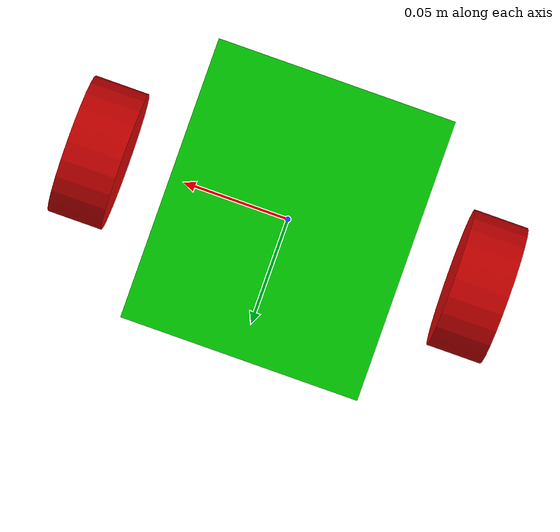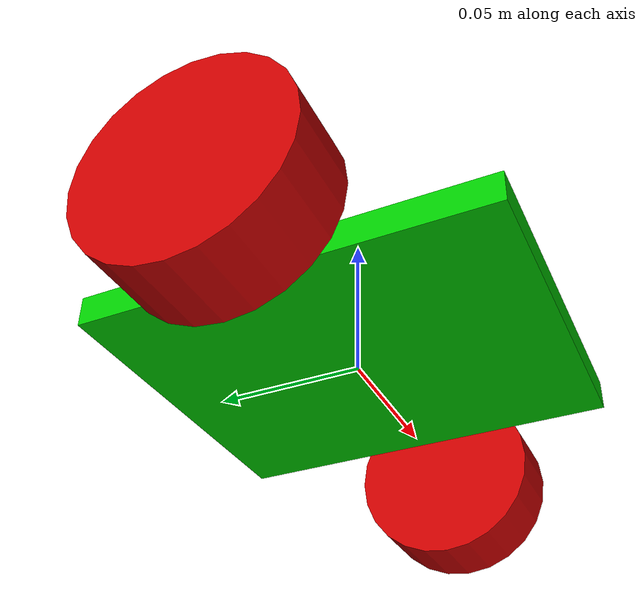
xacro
<?xml version="1.0"?>
<robot xmlns:xacro="http://www.ros.org/wiki/xacro" name="robot">
    <xacro:property name="PI" value="3.1416"/>

    <!-- Define material named "black" with RGBA color values -->
    <material name="black">
        <color rgba="0.0 0.0 0.0 1.0" />
    </material>

    <!-- Define material named "blue" with RGBA color values -->
    <material name="blue">
        <color rgba="0.0 0.0 0.8 1.0" />
    </material>

    <!-- Define material named "green" with RGBA color values -->
    <material name="green">
        <color rgba="0.0 0.8 0.0 1.0" />
    </material>

    <!-- Define material named "red" with RGBA color values -->
    <material name="red">
        <color rgba="0.8 0.0 0.0 1.0" />
    </material>

    <!-- Define link named "world" -->
    <link name="world" />

    <!-- Define link named "base" -->
    <link name="base">
        <collision>
            <origin xyz="0 0 0.005" rpy="0 0 0" />
            <geometry>
                <box size="0.113 0.133 0.01" />
            </geometry>
        </collision>
        <visual>
            <origin xyz="0 0 0.005" rpy="0 0 0" />
            <geometry>
                <box size="0.113 0.133 0.01" />
            </geometry>
            <material name="green" />
        </visual>

    </link>

    <link name="base_link"/>
     <!-- 连接 base 和 base_link -->
    <joint name="base_to_base_link" type="fixed">
        <parent link="base"/>
        <child link="base_link"/>
        <origin xyz="0 0 0" rpy="0 0 0"/>
    </joint>

    <!-- Define link named "rotor1" -->
    <link name="rotor1">
        <collision>
            <origin xyz="0 0 0" rpy="0 0 0" />
            <geometry>
                <cylinder radius="0.0325" length="0.0256" />
            </geometry>
        </collision>
        <visual>
            <origin xyz="0 0 0" rpy="0 0 0" />
            <geometry>
                <cylinder radius="0.0325" length="0.0256" />
            </geometry>
            <material name="red" />
        </visual>

    </link>

    <!-- Define link named "rotor2" -->
    <link name="rotor2">
        <collision>
            <origin xyz="0 0 0" rpy="0 0 0" />
            <geometry>
                <cylinder radius="0.0325" length="0.0256" />
            </geometry>
        </collision>
        <visual>
            <origin xyz="0 0 0" rpy="0 0 0" />
            <geometry>
                <cylinder radius="0.0325" length="0.0256" />
            </geometry>
            <material name="red" />
        </visual>

    </link>

    <!-- Define joint named "joint1" with type "fixed" -->
    <joint name="joint1" type="fixed">
        <parent link="world" />
        <child link="base" />
        <origin xyz="0 0 0" rpy="0 0 0" />
        <axis xyz="0 1 0" />
    </joint>

    <!-- Define joint named "joint2" with type "continuous" -->
    <joint name="joint2" type="continuous">
        <parent link="base" />
        <child link="rotor1" />
        <origin xyz="0.091 0 0" rpy="0 1.5708 0" />
        <axis xyz="0 0 1" />
    </joint>

    <!-- Define joint named "joint3" with type "continuous" -->
    <joint name="joint3" type="continuous">
        <parent link="base" />
        <child link="rotor2" />
        <origin xyz="-0.091 0 0" rpy="0 1.5708 0" />
        <axis xyz="0 0 1" />
    </joint>

  <ros2_control name="arduino_actuator_ros2_control" type="system">
    <hardware>
      <plugin>arduino_controller/ArduinoInterface</plugin>
        <param name="port">/dev/ttyACM0</param>

    </hardware>

    <joint name="joint2">
        <command_interface name="velocity">
        </command_interface>
        <state_interface name="velocity"/>
        <state_interface name="position"/>
    </joint>

    <joint name="joint3">
        <command_interface name="velocity">
        </command_interface>
        <state_interface name="velocity"/>
        <state_interface name="position"/>
    </joint>

  </ros2_control>

</robot>
